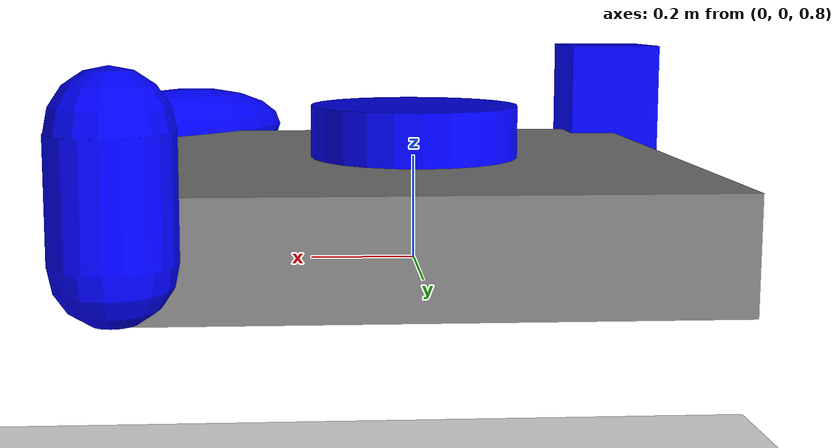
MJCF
<mujoco>
  <option density="1000">
    <flag gravity="disable"/>
  </option>

  <worldbody>
    <geom type="plane" size="10 10 .1" rgba="1 1 1 1"/>
    <light pos="0 0 20"/>
    <body name="body_stateless" pos="0 0 .5">
      <freejoint/>
      <geom type="box" size=".5 .5 .1" pos="0 0 .4"/>
      <site name="capsule" pos=".5 .5 .5" rgba="0 0 1 1" size=".1 .1" type="capsule"/>
      <site name="ellipsoid" pos=".5 -.5 .5" rgba="0 0 1 1" size=".1 .3 .1" type="ellipsoid" euler="0 0 -45"/>
      <site name="cylinder" pos="0 0 .5" rgba="0 0 1 1" size=".2 .1" type="cylinder"/>
      <site name="box" pos="-.5 -.5 .5" rgba="0 0 1 1" size=".1 .1 .2" type="box"/>
    </body>
  </worldbody>

  <actuator>
    <general name="ellipsoid" site="ellipsoid" gear="0 1 0 0 0 0" ctrllimited="true" ctrlrange="-100 100"/>
    <general name="cylinder" site="cylinder" gear="0 0 0 0 0 1" ctrllimited="true" ctrlrange="-100 100"/>
    <general name="box" site="box" dyntype="integrator" gear="0 0 1 0 0 0" ctrllimited="true" ctrlrange="-100 100"/>
    <general name="capsule" site="capsule" dyntype="integrator" gear="0 0 1 0 0 0" ctrllimited="true" ctrlrange="-100 100"/>
  </actuator>
</mujoco>
